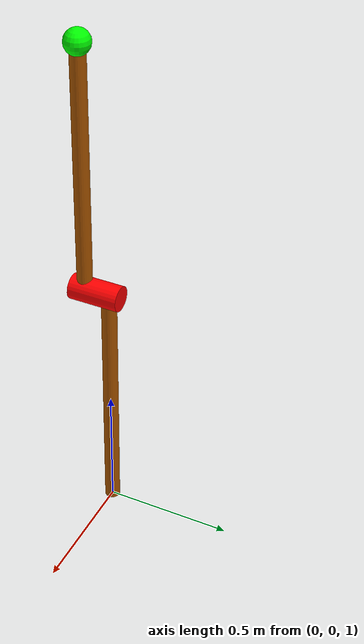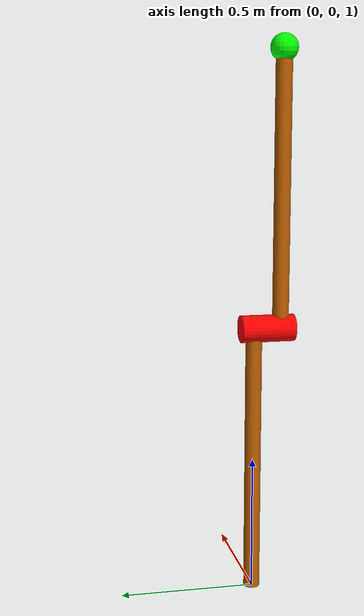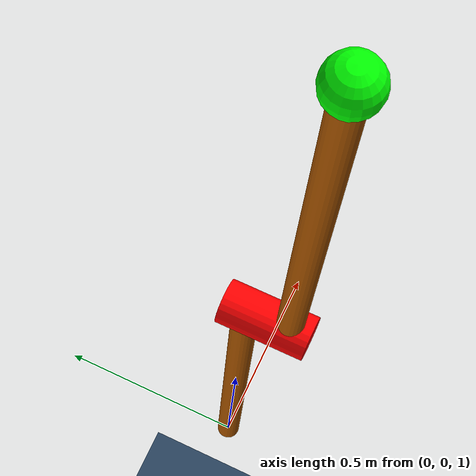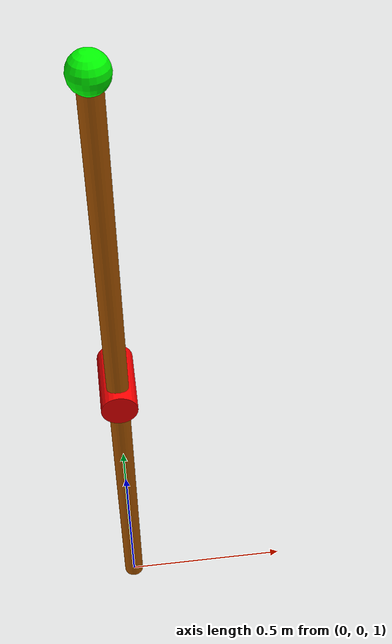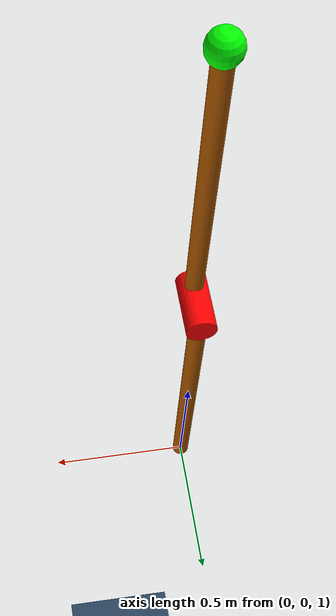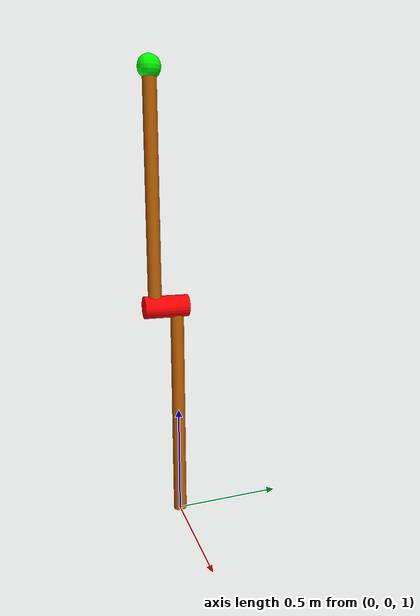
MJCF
<!-- https://mujoco.readthedocs.io/en/latest/overview.html?highlight=hello.xml#examples -->
<mujoco>
  <option gravity = "0 0 -9.81" integrator="RK4" timestep="0.0005" />
   <worldbody>
      <camera pos="-1.316 -4.893 1.281" xyaxes="0.963 -0.271 0.000 0.058 0.206 0.977"/>

      <body pos="0 0 1" euler="0 180 0">
         <joint name="joint0" type="hinge" axis = "0 -1 0" pos = "0 0 0" damping="1.0"/>
         <geom type="cylinder" size="0.05 0.1" rgba="1 0 0 1" mass="0.8" euler="90 0 0" pos="0 -0.05 -1.0"/>
         <geom type="cylinder" size="0.03 0.5" rgba="0.7 0.35 0 1" mass="0.0" pos="0 0 -0.5"/>
         <body pos="0 -0.1 -1" euler="0 0 0">
           <joint name="joint1" type="hinge" axis = "0 -1 0" pos = "0 0 0.0" damping="1.4"/>
           <geom type="sphere" size="0.05" rgba="0 1 0 1" mass="0.4" pos="0 0 -1.0"/>
           <geom type="cylinder" size="0.03 0.5" rgba="0.7 0.35 0 1" mass="0.0" pos="0 0 -.5"/>
         </body>
      </body>
    </worldbody>
   <actuator>
     <motor name="torque0" joint="joint0"  gear="1" />
     <motor name="torque1" joint="joint1"  gear="1" />
   </actuator>
  <asset>
    <texture type="skybox" builtin="gradient" rgb1=".3 .5 .7" rgb2="0 0 0" width="512" height="512"/>
    <texture name="floor" type="2d" builtin="checker" width="512" height="512" rgb1=".1 .2 .3" rgb2=".2 .3 .4"/>
    <material name="floor" texture="floor" texrepeat="1 1" texuniform="true" reflectance=".2"/>
  </asset>
  <worldbody>
    <geom name="floor" size="10 10 .05" type="plane" material="floor" condim="3" pos="0 0 -2"/>
    <light directional="true" diffuse=".9 .9 .9" specular="0.1 0.1 0.1" pos="0 0 5" dir="0 0 -1" castshadow="true"/>
    <light name="spotlight" mode="targetbodycom" target="world" diffuse="1 1 1" specular="0.3 0.3 0.3" pos="-6 -6 4" cutoff="60"/>
  </worldbody>
</mujoco>
